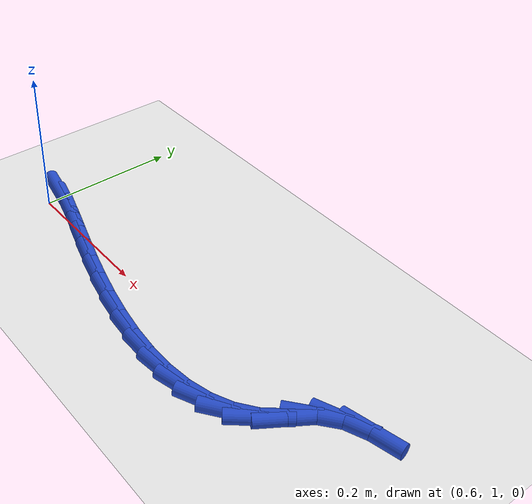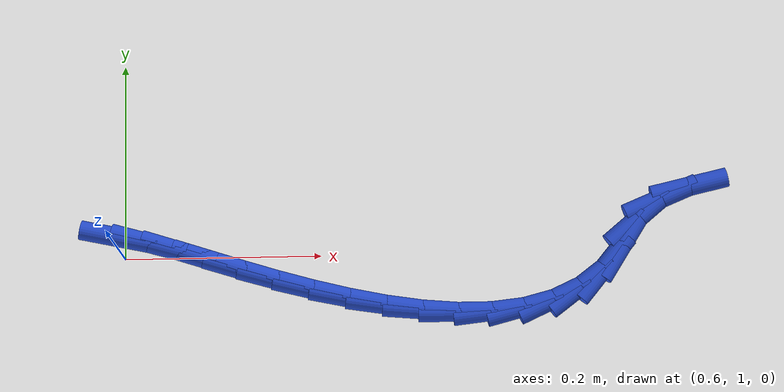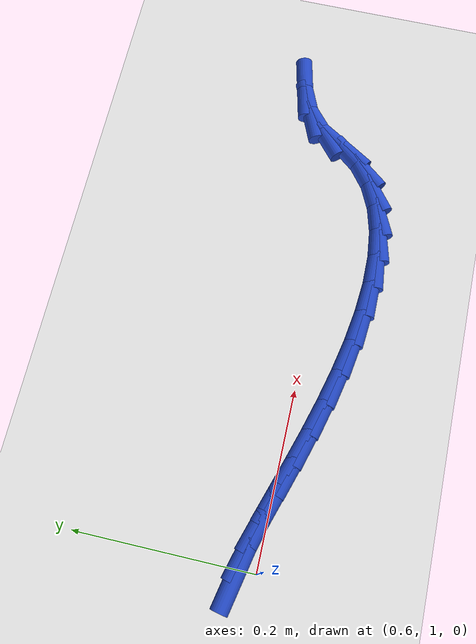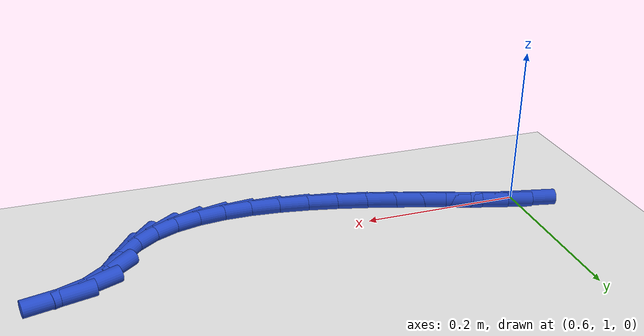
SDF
<sdf version="1.6">
 <world name="default">
  <model name="ground_plane">
   <static>1</static>
   <link name="link">
    <collision name="collision">
     <geometry><plane><normal>0 0 1</normal><size>100 100</size></plane></geometry>
     <surface><friction><ode><mu>100</mu><mu2>50</mu2></ode></friction></surface>
    </collision>
    <visual name="visual">
     <cast_shadows>0</cast_shadows>
     <geometry><plane><normal>0 0 1</normal><size>100 100</size></plane></geometry>
     <material>
      <script><uri>file://media/materials/scripts/gazebo.material</uri><name>Gazebo/WhiteGlow</name></script>
     </material>
    </visual>
   </link>
  </model>
  <model name="line">
   <link name="link_41">
    <pose>0.5940001245094084 1.0216420330727671 0.01 0 1.57 -0.20685831782249942</pose>
    <collision name="collision">
     <geometry><cylinder><radius>0.01</radius><length>0.08</length></cylinder></geometry>
    </collision>
    <visual name="visual">
     <material>
      <script><name>Gazebo/Blue</name><uri>file://media/materials/scripts/gazebo.material</uri></script>
     </material>
     <geometry><cylinder><radius>0.01</radius><length>0.08</length></cylinder></geometry>
    </visual>
   </link>
   <link name="link_42">
    <pose>0.624482492244297 1.0152449965646024 0.01 0 1.57 -0.27097365908186444</pose>
    <collision name="collision">
     <geometry><cylinder><radius>0.01</radius><length>0.08</length></cylinder></geometry>
    </collision>
    <visual name="visual">
     <material>
      <script><name>Gazebo/Blue</name><uri>file://media/materials/scripts/gazebo.material</uri></script>
     </material>
     <geometry><cylinder><radius>0.01</radius><length>0.08</length></cylinder></geometry>
    </visual>
   </link>
   <link name="link_43">
    <pose>0.6550537055359185 1.0067521100512224 0.01 0 1.57 -0.3059984752589177</pose>
    <collision name="collision">
     <geometry><cylinder><radius>0.01</radius><length>0.08</length></cylinder></geometry>
    </collision>
    <visual name="visual">
     <material>
      <script><name>Gazebo/Blue</name><uri>file://media/materials/scripts/gazebo.material</uri></script>
     </material>
     <geometry><cylinder><radius>0.01</radius><length>0.08</length></cylinder></geometry>
    </visual>
   </link>
   <link name="link_44">
    <pose>0.6864131232162729 0.9968450111521242 0.01 0 1.57 -0.313256914609435</pose>
    <collision name="collision">
     <geometry><cylinder><radius>0.01</radius><length>0.08</length></cylinder></geometry>
    </collision>
    <visual name="visual">
     <material>
      <script><name>Gazebo/Blue</name><uri>file://media/materials/scripts/gazebo.material</uri></script>
     </material>
     <geometry><cylinder><radius>0.01</radius><length>0.08</length></cylinder></geometry>
    </visual>
   </link>
   <link name="link_45">
    <pose>0.7192596535509933 0.9862052850712042 0.01 0 1.57 -0.2995371547147501</pose>
    <collision name="collision">
     <geometry><cylinder><radius>0.01</radius><length>0.08</length></cylinder></geometry>
    </collision>
    <visual name="visual">
     <material>
      <script><name>Gazebo/Blue</name><uri>file://media/materials/scripts/gazebo.material</uri></script>
     </material>
     <geometry><cylinder><radius>0.01</radius><length>0.08</length></cylinder></geometry>
    </visual>
   </link>
   <link name="link_46">
    <pose>0.7539904226080872 0.9754794098742945 0.01 0 1.57 -0.2763118029908803</pose>
    <collision name="collision">
     <geometry><cylinder><radius>0.01</radius><length>0.08</length></cylinder></geometry>
    </collision>
    <visual name="visual">
     <material>
      <script><name>Gazebo/Blue</name><uri>file://media/materials/scripts/gazebo.material</uri></script>
     </material>
     <geometry><cylinder><radius>0.01</radius><length>0.08</length></cylinder></geometry>
    </visual>
   </link>
   <link name="link_47">
    <pose>0.790177813029124 0.9652179189970741 0.01 0 1.57 -0.24481662532636664</pose>
    <collision name="collision">
     <geometry><cylinder><radius>0.01</radius><length>0.08</length></cylinder></geometry>
    </collision>
    <visual name="visual">
     <material>
      <script><name>Gazebo/Blue</name><uri>file://media/materials/scripts/gazebo.material</uri></script>
     </material>
     <geometry><cylinder><radius>0.01</radius><length>0.08</length></cylinder></geometry>
    </visual>
   </link>
   <link name="link_48">
    <pose>0.8272546009942077 0.9559551050785289 0.01 0 1.57 -0.20381612713430444</pose>
    <collision name="collision">
     <geometry><cylinder><radius>0.01</radius><length>0.08</length></cylinder></geometry>
    </collision>
    <visual name="visual">
     <material>
      <script><name>Gazebo/Blue</name><uri>file://media/materials/scripts/gazebo.material</uri></script>
     </material>
     <geometry><cylinder><radius>0.01</radius><length>0.08</length></cylinder></geometry>
    </visual>
   </link>
   <link name="link_49">
    <pose>0.8646535626834423 0.9482252607576458 0.01 0 1.57 -0.1512448794798832</pose>
    <collision name="collision">
     <geometry><cylinder><radius>0.01</radius><length>0.08</length></cylinder></geometry>
    </collision>
    <visual name="visual">
     <material>
      <script><name>Gazebo/Blue</name><uri>file://media/materials/scripts/gazebo.material</uri></script>
     </material>
     <geometry><cylinder><radius>0.01</radius><length>0.08</length></cylinder></geometry>
    </visual>
   </link>
   <link name="link_50">
    <pose>0.9018074742769316 0.9425626786734103 0.01 0 1.57 -0.08403085780598142</pose>
    <collision name="collision">
     <geometry><cylinder><radius>0.01</radius><length>0.08</length></cylinder></geometry>
    </collision>
    <visual name="visual">
     <material>
      <script><name>Gazebo/Blue</name><uri>file://media/materials/scripts/gazebo.material</uri></script>
     </material>
     <geometry><cylinder><radius>0.01</radius><length>0.08</length></cylinder></geometry>
    </visual>
   </link>
   <link name="link_51">
    <pose>0.9381491119547798 0.9395016514648082 0.01 0 1.57 0.002140034675275217</pose>
    <collision name="collision">
     <geometry><cylinder><radius>0.01</radius><length>0.08</length></cylinder></geometry>
    </collision>
    <visual name="visual">
     <material>
      <script><name>Gazebo/Blue</name><uri>file://media/materials/scripts/gazebo.material</uri></script>
     </material>
     <geometry><cylinder><radius>0.01</radius><length>0.08</length></cylinder></geometry>
    </visual>
   </link>
   <link name="link_52">
    <pose>0.9731112518970908 0.939576471770826 0.01 0 1.57 0.11294788858068389</pose>
    <collision name="collision">
     <geometry><cylinder><radius>0.01</radius><length>0.08</length></cylinder></geometry>
    </collision>
    <visual name="visual">
     <material>
      <script><name>Gazebo/Blue</name><uri>file://media/materials/scripts/gazebo.material</uri></script>
     </material>
     <geometry><cylinder><radius>0.01</radius><length>0.08</length></cylinder></geometry>
    </visual>
   </link>
   <link name="link_53">
    <pose>1.0061266702839684 0.9433214322304502 0.01 0 1.57 0.2549517628960885</pose>
    <collision name="collision">
     <geometry><cylinder><radius>0.01</radius><length>0.08</length></cylinder></geometry>
    </collision>
    <visual name="visual">
     <material>
      <script><name>Gazebo/Blue</name><uri>file://media/materials/scripts/gazebo.material</uri></script>
     </material>
     <geometry><cylinder><radius>0.01</radius><length>0.08</length></cylinder></geometry>
    </visual>
   </link>
   <link name="link_54">
    <pose>1.0366281432955171 0.9512708254826658 0.01 0 1.57 0.4333872648068971</pose>
    <collision name="collision">
     <geometry><cylinder><radius>0.01</radius><length>0.08</length></cylinder></geometry>
    </collision>
    <visual name="visual">
     <material>
      <script><name>Gazebo/Blue</name><uri>file://media/materials/scripts/gazebo.material</uri></script>
     </material>
     <geometry><cylinder><radius>0.01</radius><length>0.08</length></cylinder></geometry>
    </visual>
   </link>
   <link name="link_55">
    <pose>1.0640484471118403 0.9639589441664599 0.01 0 1.57 0.6470508748743125</pose>
    <collision name="collision">
     <geometry><cylinder><radius>0.01</radius><length>0.08</length></cylinder></geometry>
    </collision>
    <visual name="visual">
     <material>
      <script><name>Gazebo/Blue</name><uri>file://media/materials/scripts/gazebo.material</uri></script>
     </material>
     <geometry><cylinder><radius>0.01</radius><length>0.08</length></cylinder></geometry>
    </visual>
   </link>
   <link name="link_56">
    <pose>1.0878203579130425 0.9819200809208182 0.01 0 1.57 0.8823163824602731</pose>
    <collision name="collision">
     <geometry><cylinder><radius>0.01</radius><length>0.08</length></cylinder></geometry>
    </collision>
    <visual name="visual">
     <material>
      <script><name>Gazebo/Blue</name><uri>file://media/materials/scripts/gazebo.material</uri></script>
     </material>
     <geometry><cylinder><radius>0.01</radius><length>0.08</length></cylinder></geometry>
    </visual>
   </link>
   <link name="link_57">
    <pose>1.1073766518792274 1.0056885283847263 0.01 0 1.57 1.0067197105359778</pose>
    <collision name="collision">
     <geometry><cylinder><radius>0.01</radius><length>0.08</length></cylinder></geometry>
    </collision>
    <visual name="visual">
     <material>
      <script><name>Gazebo/Blue</name><uri>file://media/materials/scripts/gazebo.material</uri></script>
     </material>
     <geometry><cylinder><radius>0.01</radius><length>0.08</length></cylinder></geometry>
    </visual>
   </link>
   <link name="link_58">
    <pose>1.124518140577839 1.0327835656216062 0.01 0 1.57 0.695245705959541</pose>
    <collision name="collision">
     <geometry><cylinder><radius>0.01</radius><length>0.08</length></cylinder></geometry>
    </collision>
    <visual name="visual">
     <material>
      <script><name>Gazebo/Blue</name><uri>file://media/materials/scripts/gazebo.material</uri></script>
     </material>
     <geometry><cylinder><radius>0.01</radius><length>0.08</length></cylinder></geometry>
    </visual>
   </link>
   <link name="link_59">
    <pose>1.1478004280402363 1.0522054986900038 0.01 0 1.57 0.39499429178639595</pose>
    <collision name="collision">
     <geometry><cylinder><radius>0.01</radius><length>0.08</length></cylinder></geometry>
    </collision>
    <visual name="visual">
     <material>
      <script><name>Gazebo/Blue</name><uri>file://media/materials/scripts/gazebo.material</uri></script>
     </material>
     <geometry><cylinder><radius>0.01</radius><length>0.08</length></cylinder></geometry>
    </visual>
   </link>
   <link name="link_60">
    <pose>1.176968419094043 1.0643657838468366 0.01 0 1.57 0.22753120355289683</pose>
    <collision name="collision">
     <geometry><cylinder><radius>0.01</radius><length>0.08</length></cylinder></geometry>
    </collision>
    <visual name="visual">
     <material>
      <script><name>Gazebo/Blue</name><uri>file://media/materials/scripts/gazebo.material</uri></script>
     </material>
     <geometry><cylinder><radius>0.01</radius><length>0.08</length></cylinder></geometry>
    </visual>
   </link>
  </model>
 </world>
</sdf>
